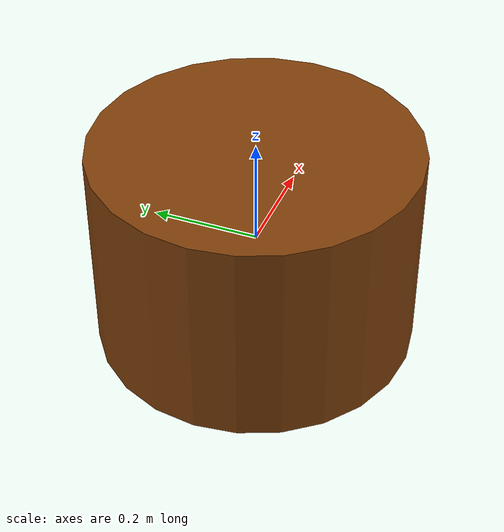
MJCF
<mujoco model="stool">
  <worldbody>
    <body name="stool" pos="0 0 0" quat="1 0 0 0">
      <geom name="base" type="cylinder" pos="0 0 0" size=".3 0.2" mass="0.001" material="seat"/>
    </body>
  </worldbody>

  <asset>
    <material name="seat" rgba="0.5 0.25 0.04 1"/>
    <material name="wood" rgba="0.6 0.32 0.07 1"/>
  </asset>

  <keyframe>
    <key name="home"
      qpos="0.022
  -0.014
   0.72
   0.99
   0.017
  -0.013
   0.13
   0.011
  -0.078
  -0.024
  -0.27
  -0.28
  -1.9
  -2.1
  -0.081
   0.2
  -0.28
  -0.2
  -1.9
  -2.1
  -0.11
   0.056
   0.51
  -0.48
  -1.7
   0.53
  -0.5
  -1.8"/>
  </keyframe>
</mujoco>
